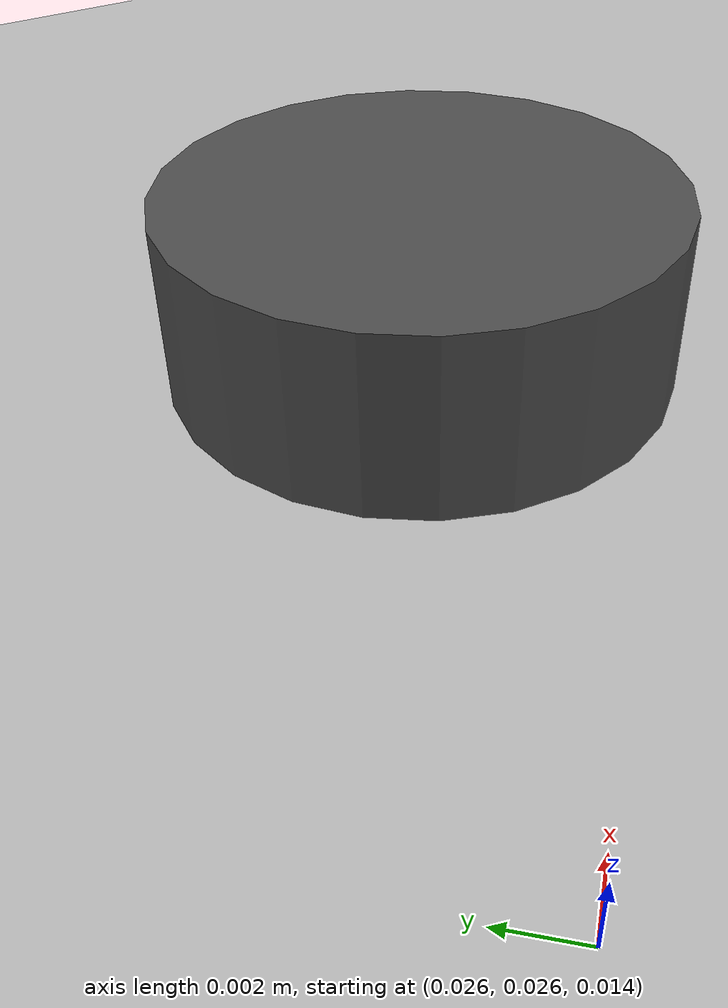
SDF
<?xml version="1.0" ?>
<sdf version="1.6">
  <model name="disk_part">
    <link name="link">
      <inertial>
        <pose>0 0 0.02895 0 0 0</pose>
        <mass>0.5</mass>
        <inertia>
          <ixx>0.0032121798</ixx>
          <ixy>0</ixy>
          <ixz>0</ixz>
          <iyy>0.0032121798</iyy>
          <iyz>0</iyz>
          <izz>0.0061449921</izz>
        </inertia>
      </inertial>

      <collision name="collision">
        <max_contacts>10</max_contacts>
        <pose>0 0 0.01158 0 0 0</pose>
        <geometry>
          <cylinder>
            <length>0.0231  6</length>
            <radius>0.0627</radius>
          </cylinder>
        </geometry>
        <surface>
          <contact>
            <ode>
              <max_vel>0.0</max_vel>
              <min_depth>0.001</min_depth>
            </ode>
          </contact>
        </surface>
      </collision>

      <visual name="visual">
         <geometry>
           <mesh>
             <scale>0.4 0.4 0.4</scale>
             <uri>model://disk_part/meshes/disk.dae</uri>
           </mesh>
         </geometry>
        <material>
          <script>
            <uri>model://arm_part/materials/scripts</uri>
            <uri>model://arm_part/materials/textures</uri>
            <name>ArmPart/Diffuse</name>
          </script>
        </material>
       </visual>

      <collision name="collision_asymmetric_mark">
        <pose>0.03 0.03 0.02 0 0 0</pose>
        <max_contacts>10</max_contacts>
         <geometry>
          <cylinder>
            <length>0.012</length>
            <radius>0.00392125</radius>
          </cylinder>
         </geometry>
        <surface>
          <contact>
            <ode>
              <max_vel>0.0</max_vel>
              <min_depth>0.01</min_depth>
            </ode>
          </contact>
        </surface>
      </collision>

      <visual name="visual_asymmetric_mark">
        <pose>0.03 0.03 0.02 0 0 0</pose>
         <geometry>
          <cylinder>
            <length>0.012</length>
            <radius>0.00392125</radius>
          </cylinder>
         </geometry>
        <material>
          <lighting>1</lighting>
          <script>
            <uri>file://media/materials/scripts/gazebo.material</uri>
            <name>Gazebo/DarkGrey</name>
          </script>
          <emissive>0 0 0 1</emissive>
        </material>
      </visual>
    </link>
  </model>
</sdf>
